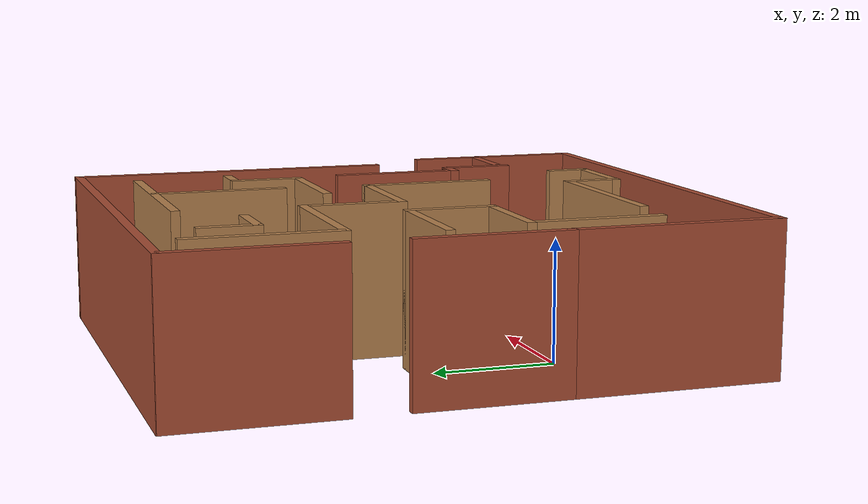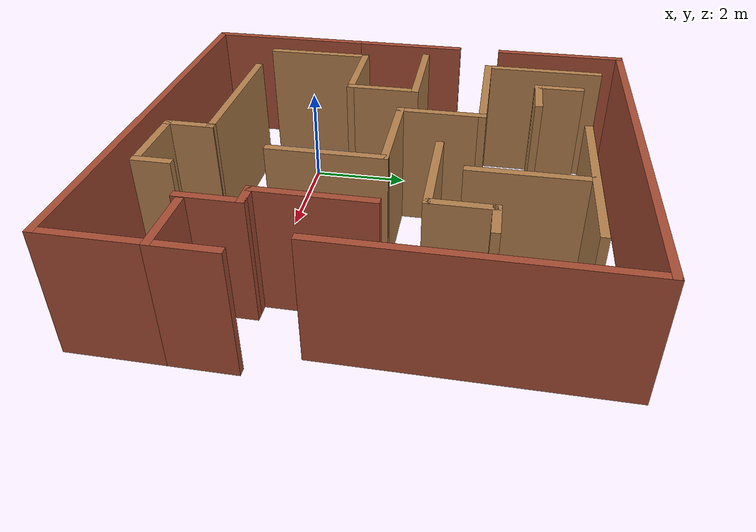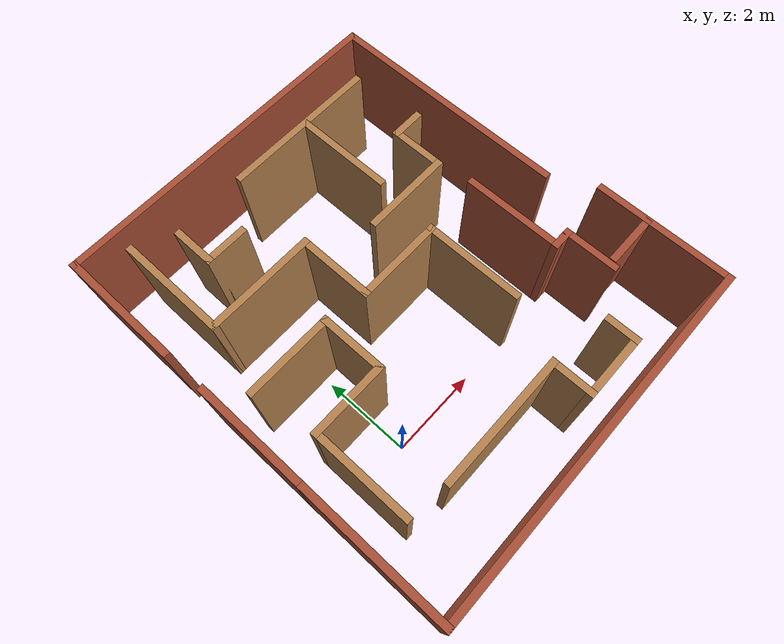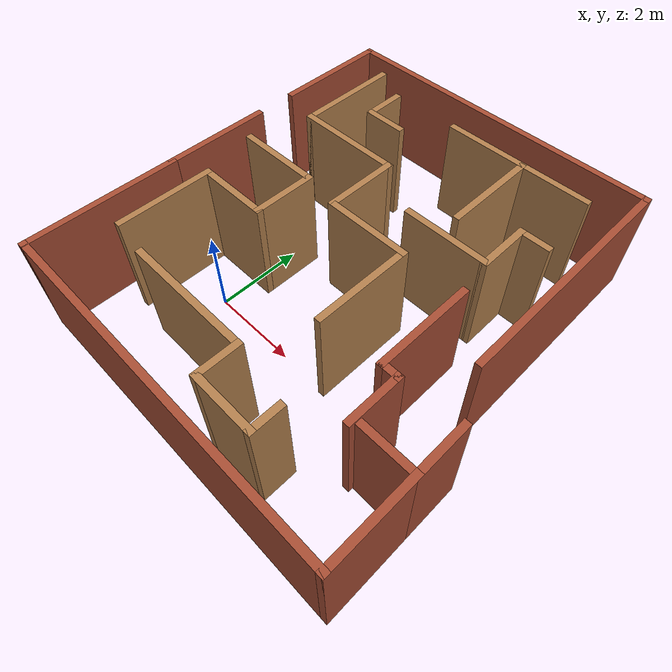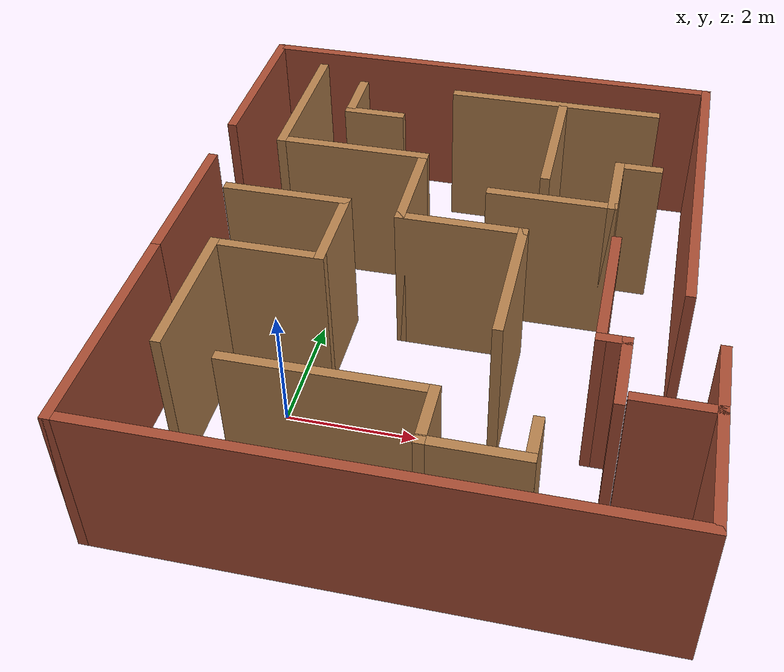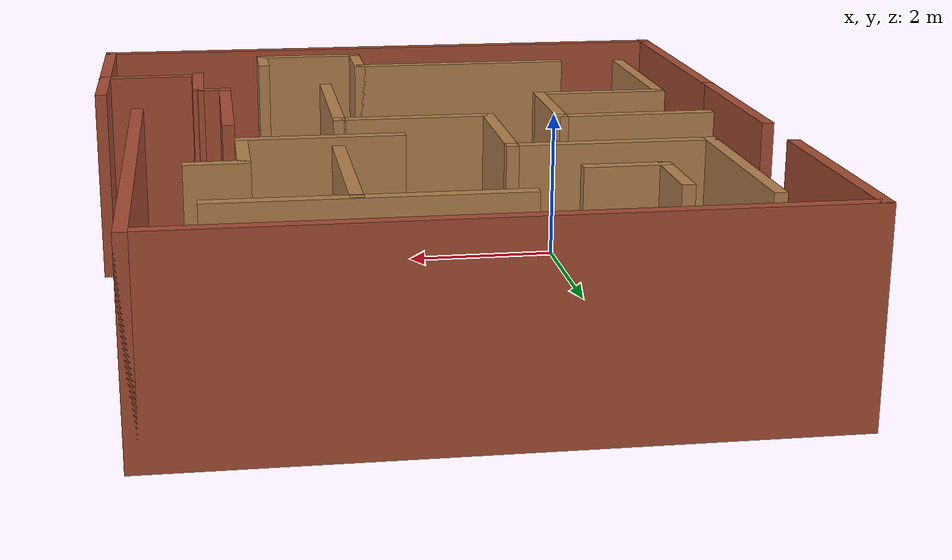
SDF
<?xml version='1.0'?>
<sdf version='1.7'>
  <model name='maze'>
    <pose>2.06 1.905 0 0 -0 0</pose>
    <link name='Wall_16'>
      <collision name='Wall_16_Collision'>
        <geometry>
          <box>
            <size>2.5 0.15 2.5</size>
          </box>
        </geometry>
        <pose>0 0 1.25 0 -0 0</pose>
      </collision>
      <visual name='Wall_16_Visual'>
        <pose>0 0 1.25 0 -0 0</pose>
        <geometry>
          <box>
            <size>2.5 0.15 2.5</size>
          </box>
        </geometry>
        <material>
          <script>
            <uri>file://media/materials/scripts/gazebo.material</uri>
            <name>Gazebo/Wood</name>
          </script>
          <ambient>1 1 1 1</ambient>
        </material>
        <meta>
          <layer>0</layer>
        </meta>
      </visual>
      <pose>-3.11479 2.96427 0 0 -0 -1.5708</pose>
    </link>
    <link name='Wall_18'>
      <collision name='Wall_18_Collision'>
        <geometry>
          <box>
            <size>3.5 0.15 2.5</size>
          </box>
        </geometry>
        <pose>0 0 1.25 0 -0 0</pose>
      </collision>
      <visual name='Wall_18_Visual'>
        <pose>0 0 1.25 0 -0 0</pose>
        <geometry>
          <box>
            <size>3.5 0.15 2.5</size>
          </box>
        </geometry>
        <material>
          <script>
            <uri>file://media/materials/scripts/gazebo.material</uri>
            <name>Gazebo/Bricks</name>
          </script>
          <ambient>1 1 1 1</ambient>
        </material>
        <meta>
          <layer>0</layer>
        </meta>
      </visual>
      <pose>-4.05 -2.99 0 0 -0 -1.5708</pose>
    </link>
    <link name='Wall_19'>
      <collision name='Wall_19_Collision'>
        <geometry>
          <box>
            <size>8.25 0.15 2.5</size>
          </box>
        </geometry>
        <pose>0 0 1.25 0 -0 0</pose>
      </collision>
      <visual name='Wall_19_Visual'>
        <pose>0 0 1.25 0 -0 0</pose>
        <geometry>
          <box>
            <size>8.25 0.15 2.5</size>
          </box>
        </geometry>
        <material>
          <script>
            <uri>file://media/materials/scripts/gazebo.material</uri>
            <name>Gazebo/Bricks</name>
          </script>
          <ambient>1 1 1 1</ambient>
        </material>
        <meta>
          <layer>0</layer>
        </meta>
      </visual>
      <pose>-0 -4.665 0 0 -0 0</pose>
    </link>
    <link name='Wall_21'>
      <collision name='Wall_21_Collision'>
        <geometry>
          <box>
            <size>5.5 0.15 2.5</size>
          </box>
        </geometry>
        <pose>0 0 1.25 0 -0 0</pose>
      </collision>
      <visual name='Wall_21_Visual'>
        <pose>0 0 1.25 0 -0 0</pose>
        <geometry>
          <box>
            <size>5.5 0.15 2.5</size>
          </box>
        </geometry>
        <material>
          <script>
            <uri>file://media/materials/scripts/gazebo.material</uri>
            <name>Gazebo/Bricks</name>
          </script>
          <ambient>1 1 1 1</ambient>
        </material>
        <meta>
          <layer>0</layer>
        </meta>
      </visual>
      <pose>3.55 1.99 0 0 -0 -1.5708</pose>
    </link>
    <link name='Wall_24'>
      <collision name='Wall_24_Collision'>
        <geometry>
          <box>
            <size>2 0.15 2.5</size>
          </box>
        </geometry>
        <pose>0 0 1.25 0 -0 0</pose>
      </collision>
      <visual name='Wall_24_Visual'>
        <pose>0 0 1.25 0 -0 0</pose>
        <geometry>
          <box>
            <size>2 0.15 2.5</size>
          </box>
        </geometry>
        <material>
          <script>
            <uri>file://media/materials/scripts/gazebo.material</uri>
            <name>Gazebo/Bricks</name>
          </script>
          <ambient>1 1 1 1</ambient>
        </material>
        <meta>
          <layer>0</layer>
        </meta>
      </visual>
      <pose>4.05 -3.74 0 0 -0 1.5708</pose>
    </link>
    <link name='Wall_25'>
      <collision name='Wall_25_Collision'>
        <geometry>
          <box>
            <size>1.25 0.15 2.5</size>
          </box>
        </geometry>
        <pose>0 0 1.25 0 -0 0</pose>
      </collision>
      <visual name='Wall_25_Visual'>
        <pose>0 0 1.25 0 -0 0</pose>
        <geometry>
          <box>
            <size>1.25 0.15 2.5</size>
          </box>
        </geometry>
        <material>
          <script>
            <uri>file://media/materials/scripts/gazebo.material</uri>
            <name>Gazebo/Bricks</name>
          </script>
          <ambient>1 1 1 1</ambient>
        </material>
        <meta>
          <layer>0</layer>
        </meta>
      </visual>
      <pose>3.5 -2.815 0 0 -0 3.14159</pose>
    </link>
    <link name='Wall_28'>
      <collision name='Wall_28_Collision'>
        <geometry>
          <box>
            <size>2.5 0.15 2.5</size>
          </box>
        </geometry>
        <pose>0 0 1.25 0 -0 0</pose>
      </collision>
      <visual name='Wall_28_Visual'>
        <pose>0 0 1.25 0 -0 0</pose>
        <geometry>
          <box>
            <size>2.5 0.15 2.5</size>
          </box>
        </geometry>
        <material>
          <script>
            <uri>file://media/materials/scripts/gazebo.material</uri>
            <name>Gazebo/Wood</name>
          </script>
          <ambient>1 1 1 1</ambient>
        </material>
        <meta>
          <layer>0</layer>
        </meta>
      </visual>
      <pose>-1.93979 1.78927 0 0 -0 0</pose>
    </link>
    <link name='Wall_29'>
      <collision name='Wall_29_Collision'>
        <geometry>
          <box>
            <size>1.75 0.15 2.5</size>
          </box>
        </geometry>
        <pose>0 0 1.25 0 -0 0</pose>
      </collision>
      <visual name='Wall_29_Visual'>
        <pose>0 0 1.25 0 -0 0</pose>
        <geometry>
          <box>
            <size>1.75 0.15 2.5</size>
          </box>
        </geometry>
        <material>
          <script>
            <uri>file://media/materials/scripts/gazebo.material</uri>
            <name>Gazebo/Wood</name>
          </script>
          <ambient>1 1 1 1</ambient>
        </material>
        <meta>
          <layer>0</layer>
        </meta>
      </visual>
      <pose>-0.764794 0.989271 0 0 -0 -1.5708</pose>
    </link>
    <link name='Wall_3'>
      <collision name='Wall_3_Collision'>
        <geometry>
          <box>
            <size>2.5 0.15 2.5</size>
          </box>
        </geometry>
        <pose>0 0 1.25 0 -0 0</pose>
      </collision>
      <visual name='Wall_3_Visual'>
        <pose>0 0 1.25 0 -0 0</pose>
        <geometry>
          <box>
            <size>2.5 0.15 2.5</size>
          </box>
        </geometry>
        <material>
          <script>
            <uri>file://media/materials/scripts/gazebo.material</uri>
            <name>Gazebo/Bricks</name>
          </script>
          <ambient>1 1 1 1</ambient>
        </material>
        <meta>
          <layer>0</layer>
        </meta>
      </visual>
      <pose>-4.05 -0.14 0 0 -0 -1.5708</pose>
    </link>
    <link name='Wall_30'>
      <collision name='Wall_30_Collision'>
        <geometry>
          <box>
            <size>2 0.15 2.5</size>
          </box>
        </geometry>
        <pose>0 0 1.25 0 -0 0</pose>
      </collision>
      <visual name='Wall_30_Visual'>
        <pose>0 0 1.25 0 -0 0</pose>
        <geometry>
          <box>
            <size>2 0.15 2.5</size>
          </box>
        </geometry>
        <material>
          <script>
            <uri>file://media/materials/scripts/gazebo.material</uri>
            <name>Gazebo/Wood</name>
          </script>
          <ambient>1 1 1 1</ambient>
        </material>
        <meta>
          <layer>0</layer>
        </meta>
      </visual>
      <pose>0.160206 0.18927 0 0 -0 0</pose>
    </link>
    <link name='Wall_31'>
      <collision name='Wall_31_Collision'>
        <geometry>
          <box>
            <size>2.25 0.15 2.5</size>
          </box>
        </geometry>
        <pose>0 0 1.25 0 -0 0</pose>
      </collision>
      <visual name='Wall_31_Visual'>
        <pose>0 0 1.25 0 -0 0</pose>
        <geometry>
          <box>
            <size>2.25 0.15 2.5</size>
          </box>
        </geometry>
        <material>
          <script>
            <uri>file://media/materials/scripts/gazebo.material</uri>
            <name>Gazebo/Wood</name>
          </script>
          <ambient>1 1 1 1</ambient>
        </material>
        <meta>
          <layer>0</layer>
        </meta>
      </visual>
      <pose>1.08521 -0.86073 0 0 -0 -1.5708</pose>
    </link>
    <link name='Wall_33'>
      <collision name='Wall_33_Collision'>
        <geometry>
          <box>
            <size>2.25 0.15 2.5</size>
          </box>
        </geometry>
        <pose>0 0 1.25 0 -0 0</pose>
      </collision>
      <visual name='Wall_33_Visual'>
        <pose>0 0 1.25 0 -0 0</pose>
        <geometry>
          <box>
            <size>2.25 0.15 2.5</size>
          </box>
        </geometry>
        <material>
          <script>
            <uri>file://media/materials/scripts/gazebo.material</uri>
            <name>Gazebo/Bricks</name>
          </script>
          <ambient>1 1 1 1</ambient>
        </material>
        <meta>
          <layer>0</layer>
        </meta>
      </visual>
      <pose>2.43521 -0.769992 0 0 -0 1.5708</pose>
    </link>
    <link name='Wall_35'>
      <collision name='Wall_35_Collision'>
        <geometry>
          <box>
            <size>3 0.15 2.5</size>
          </box>
        </geometry>
        <pose>0 0 1.25 0 -0 0</pose>
      </collision>
      <visual name='Wall_35_Visual'>
        <pose>0 0 1.25 0 -0 0</pose>
        <geometry>
          <box>
            <size>3 0.15 2.5</size>
          </box>
        </geometry>
        <material>
          <script>
            <uri>file://media/materials/scripts/gazebo.material</uri>
            <name>Gazebo/Wood</name>
          </script>
          <ambient>1 1 1 1</ambient>
        </material>
        <meta>
          <layer>0</layer>
        </meta>
      </visual>
      <pose>-0.925617 -3.22651 0 0 -0 0</pose>
    </link>
    <link name='Wall_36'>
      <collision name='Wall_36_Collision'>
        <geometry>
          <box>
            <size>1 0.15 2.5</size>
          </box>
        </geometry>
        <pose>0 0 1.25 0 -0 0</pose>
      </collision>
      <visual name='Wall_36_Visual'>
        <pose>0 0 1.25 0 -0 0</pose>
        <geometry>
          <box>
            <size>1 0.15 2.5</size>
          </box>
        </geometry>
        <material>
          <script>
            <uri>file://media/materials/scripts/gazebo.material</uri>
            <name>Gazebo/Wood</name>
          </script>
          <ambient>1 1 1 1</ambient>
        </material>
        <meta>
          <layer>0</layer>
        </meta>
      </visual>
      <pose>0.499384 -3.65151 0 0 -0 -1.5708</pose>
    </link>
    <link name='Wall_38'>
      <collision name='Wall_38_Collision'>
        <geometry>
          <box>
            <size>3.5 0.15 2.5</size>
          </box>
        </geometry>
        <pose>0 0 1.25 0 -0 0</pose>
      </collision>
      <visual name='Wall_38_Visual'>
        <pose>0 0 1.25 0 -0 0</pose>
        <geometry>
          <box>
            <size>3.5 0.15 2.5</size>
          </box>
        </geometry>
        <material>
          <script>
            <uri>file://media/materials/scripts/gazebo.material</uri>
            <name>Gazebo/Wood</name>
          </script>
          <ambient>1 1 1 1</ambient>
        </material>
        <meta>
          <layer>0</layer>
        </meta>
      </visual>
      <pose>1.0706 3.77632 0 0 -0 0</pose>
    </link>
    <link name='Wall_40'>
      <collision name='Wall_40_Collision'>
        <geometry>
          <box>
            <size>2.25 0.15 2.5</size>
          </box>
        </geometry>
        <pose>0 0 1.25 0 -0 0</pose>
      </collision>
      <visual name='Wall_40_Visual'>
        <pose>0 0 1.25 0 -0 0</pose>
        <geometry>
          <box>
            <size>2.25 0.15 2.5</size>
          </box>
        </geometry>
        <material>
          <script>
            <uri>file://media/materials/scripts/gazebo.material</uri>
            <name>Gazebo/Wood</name>
          </script>
          <ambient>1 1 1 1</ambient>
        </material>
        <meta>
          <layer>0</layer>
        </meta>
      </visual>
      <pose>1.21035 2.69608 0 0 -0 -1.5708</pose>
    </link>
    <link name='Wall_42'>
      <collision name='Wall_42_Collision'>
        <geometry>
          <box>
            <size>2 0.15 2.5</size>
          </box>
        </geometry>
        <pose>0 0 1.25 0 -0 0</pose>
      </collision>
      <visual name='Wall_42_Visual'>
        <pose>0 0 1.25 0 -0 0</pose>
        <geometry>
          <box>
            <size>2 0.15 2.5</size>
          </box>
        </geometry>
        <material>
          <script>
            <uri>file://media/materials/scripts/gazebo.material</uri>
            <name>Gazebo/Wood</name>
          </script>
          <ambient>1 1 1 1</ambient>
        </material>
        <meta>
          <layer>0</layer>
        </meta>
      </visual>
      <pose>-2.58299 0.358552 0 0 -0 0</pose>
    </link>
    <link name='Wall_43'>
      <collision name='Wall_43_Collision'>
        <geometry>
          <box>
            <size>1.5 0.15 2.5</size>
          </box>
        </geometry>
        <pose>0 0 1.25 0 -0 0</pose>
      </collision>
      <visual name='Wall_43_Visual'>
        <pose>0 0 1.25 0 -0 0</pose>
        <geometry>
          <box>
            <size>1.5 0.15 2.5</size>
          </box>
        </geometry>
        <material>
          <script>
            <uri>file://media/materials/scripts/gazebo.material</uri>
            <name>Gazebo/Wood</name>
          </script>
          <ambient>1 1 1 1</ambient>
        </material>
        <meta>
          <layer>0</layer>
        </meta>
      </visual>
      <pose>-1.65799 -0.316448 0 0 -0 -1.5708</pose>
    </link>
    <link name='Wall_44'>
      <collision name='Wall_44_Collision'>
        <geometry>
          <box>
            <size>1.75 0.15 2.5</size>
          </box>
        </geometry>
        <pose>0 0 1.25 0 -0 0</pose>
      </collision>
      <visual name='Wall_44_Visual'>
        <pose>0 0 1.25 0 -0 0</pose>
        <geometry>
          <box>
            <size>1.75 0.15 2.5</size>
          </box>
        </geometry>
        <material>
          <script>
            <uri>file://media/materials/scripts/gazebo.material</uri>
            <name>Gazebo/Wood</name>
          </script>
          <ambient>1 1 1 1</ambient>
        </material>
        <meta>
          <layer>0</layer>
        </meta>
      </visual>
      <pose>-2.45799 -0.991448 0 0 -0 3.14159</pose>
    </link>
    <link name='Wall_45'>
      <collision name='Wall_45_Collision'>
        <geometry>
          <box>
            <size>2.25 0.15 2.5</size>
          </box>
        </geometry>
        <pose>0 0 1.25 0 -0 0</pose>
      </collision>
      <visual name='Wall_45_Visual'>
        <pose>0 0 1.25 0 -0 0</pose>
        <geometry>
          <box>
            <size>2.25 0.15 2.5</size>
          </box>
        </geometry>
        <material>
          <script>
            <uri>file://media/materials/scripts/gazebo.material</uri>
            <name>Gazebo/Wood</name>
          </script>
          <ambient>1 1 1 1</ambient>
        </material>
        <meta>
          <layer>0</layer>
        </meta>
      </visual>
      <pose>-3.25799 -2.04145 0 0 -0 -1.5708</pose>
    </link>
    <link name='Wall_49'>
      <collision name='Wall_49_Collision'>
        <geometry>
          <box>
            <size>0.5 0.15 2.5</size>
          </box>
        </geometry>
        <pose>0 0 1.25 0 -0 0</pose>
      </collision>
      <visual name='Wall_49_Visual'>
        <pose>0 0 1.25 0 -0 0</pose>
        <geometry>
          <box>
            <size>0.5 0.15 2.5</size>
          </box>
        </geometry>
        <material>
          <script>
            <uri>file://media/materials/scripts/gazebo.material</uri>
            <name>Gazebo/Bricks</name>
          </script>
          <ambient>1 1 1 1</ambient>
        </material>
        <meta>
          <layer>0</layer>
        </meta>
      </visual>
      <pose>2.61021 -1.81999 0 0 -0 0</pose>
    </link>
    <link name='Wall_5'>
      <collision name='Wall_5_Collision'>
        <geometry>
          <box>
            <size>2.75 0.15 2.5</size>
          </box>
        </geometry>
        <pose>0 0 1.25 0 -0 0</pose>
      </collision>
      <visual name='Wall_5_Visual'>
        <pose>0 0 1.25 0 -0 0</pose>
        <geometry>
          <box>
            <size>2.75 0.15 2.5</size>
          </box>
        </geometry>
        <material>
          <script>
            <uri>file://media/materials/scripts/gazebo.material</uri>
            <name>Gazebo/Bricks</name>
          </script>
          <ambient>1 1 1 1</ambient>
        </material>
        <meta>
          <layer>0</layer>
        </meta>
      </visual>
      <pose>-4.05 3.355 0 0 -0 1.5708</pose>
    </link>
    <link name='Wall_50'>
      <collision name='Wall_50_Collision'>
        <geometry>
          <box>
            <size>1.25 0.15 2.5</size>
          </box>
        </geometry>
        <pose>0 0 1.25 0 -0 0</pose>
      </collision>
      <visual name='Wall_50_Visual'>
        <pose>0 0 1.25 0 -0 0</pose>
        <geometry>
          <box>
            <size>1.25 0.15 2.5</size>
          </box>
        </geometry>
        <material>
          <script>
            <uri>file://media/materials/scripts/gazebo.material</uri>
            <name>Gazebo/Bricks</name>
          </script>
          <ambient>1 1 1 1</ambient>
        </material>
        <meta>
          <layer>0</layer>
        </meta>
      </visual>
      <pose>2.78521 -2.36999 0 0 -0 -1.5708</pose>
    </link>
    <link name='Wall_52'>
      <collision name='Wall_52_Collision'>
        <geometry>
          <box>
            <size>2 0.15 2.5</size>
          </box>
        </geometry>
        <pose>0 0 1.25 0 -0 0</pose>
      </collision>
      <visual name='Wall_52_Visual'>
        <pose>0 0 1.25 0 -0 0</pose>
        <geometry>
          <box>
            <size>2 0.15 2.5</size>
          </box>
        </geometry>
        <material>
          <script>
            <uri>file://media/materials/scripts/gazebo.material</uri>
            <name>Gazebo/Wood</name>
          </script>
          <ambient>1 1 1 1</ambient>
        </material>
        <meta>
          <layer>0</layer>
        </meta>
      </visual>
      <pose>1.3792 1.08445 0 0 -0 0</pose>
    </link>
    <link name='Wall_53'>
      <collision name='Wall_53_Collision'>
        <geometry>
          <box>
            <size>1.25 0.15 2.5</size>
          </box>
        </geometry>
        <pose>0 0 1.25 0 -0 0</pose>
      </collision>
      <visual name='Wall_53_Visual'>
        <pose>0 0 1.25 0 -0 0</pose>
        <geometry>
          <box>
            <size>1.25 0.15 2.5</size>
          </box>
        </geometry>
        <material>
          <script>
            <uri>file://media/materials/scripts/gazebo.material</uri>
            <name>Gazebo/Wood</name>
          </script>
          <ambient>1 1 1 1</ambient>
        </material>
        <meta>
          <layer>0</layer>
        </meta>
      </visual>
      <pose>2.3042 1.63445 0 0 -0 1.5708</pose>
    </link>
    <link name='Wall_54'>
      <collision name='Wall_54_Collision'>
        <geometry>
          <box>
            <size>0.75 0.15 2.5</size>
          </box>
        </geometry>
        <pose>0 0 1.25 0 -0 0</pose>
      </collision>
      <visual name='Wall_54_Visual'>
        <pose>0 0 1.25 0 -0 0</pose>
        <geometry>
          <box>
            <size>0.75 0.15 2.5</size>
          </box>
        </geometry>
        <material>
          <script>
            <uri>file://media/materials/scripts/gazebo.material</uri>
            <name>Gazebo/Wood</name>
          </script>
          <ambient>1 1 1 1</ambient>
        </material>
        <meta>
          <layer>0</layer>
        </meta>
      </visual>
      <pose>2.6042 2.18445 0 0 -0 0</pose>
    </link>
    <link name='Wall_56'>
      <collision name='Wall_56_Collision'>
        <geometry>
          <box>
            <size>1 0.15 2.5</size>
          </box>
        </geometry>
        <pose>0 0 1.25 0 -0 0</pose>
      </collision>
      <visual name='Wall_56_Visual'>
        <pose>0 0 1.25 0 -0 0</pose>
        <geometry>
          <box>
            <size>1 0.15 2.5</size>
          </box>
        </geometry>
        <material>
          <script>
            <uri>file://media/materials/scripts/gazebo.material</uri>
            <name>Gazebo/Wood</name>
          </script>
          <ambient>1 1 1 1</ambient>
        </material>
        <meta>
          <layer>0</layer>
        </meta>
      </visual>
      <pose>-2.26791 3.29083 0 0 -0 -1.5708</pose>
    </link>
    <link name='Wall_57'>
      <collision name='Wall_57_Collision'>
        <geometry>
          <box>
            <size>1 0.15 2.5</size>
          </box>
        </geometry>
        <pose>0 0 1.25 0 -0 0</pose>
      </collision>
      <visual name='Wall_57_Visual'>
        <pose>0 0 1.25 0 -0 0</pose>
        <geometry>
          <box>
            <size>1 0.15 2.5</size>
          </box>
        </geometry>
        <material>
          <script>
            <uri>file://media/materials/scripts/gazebo.material</uri>
            <name>Gazebo/Wood</name>
          </script>
          <ambient>1 1 1 1</ambient>
        </material>
        <meta>
          <layer>0</layer>
        </meta>
      </visual>
      <pose>-1.84291 2.86583 0 0 -0 0</pose>
    </link>
    <link name='Wall_60'>
      <collision name='Wall_60_Collision'>
        <geometry>
          <box>
            <size>1.5 0.15 2.5</size>
          </box>
        </geometry>
        <pose>0 0 1.25 0 -0 0</pose>
      </collision>
      <visual name='Wall_60_Visual'>
        <pose>0 0 1.25 0 -0 0</pose>
        <geometry>
          <box>
            <size>1.5 0.15 2.5</size>
          </box>
        </geometry>
        <material>
          <script>
            <uri>file://media/materials/scripts/gazebo.material</uri>
            <name>Gazebo/Wood</name>
          </script>
          <ambient>1 1 1 1</ambient>
        </material>
        <meta>
          <layer>0</layer>
        </meta>
      </visual>
      <pose>1.17438 -4.07651 0 0 -0 0</pose>
    </link>
    <link name='Wall_61'>
      <collision name='Wall_61_Collision'>
        <geometry>
          <box>
            <size>0.75 0.15 2.5</size>
          </box>
        </geometry>
        <pose>0 0 1.25 0 -0 0</pose>
      </collision>
      <visual name='Wall_61_Visual'>
        <pose>0 0 1.25 0 -0 0</pose>
        <geometry>
          <box>
            <size>0.75 0.15 2.5</size>
          </box>
        </geometry>
        <material>
          <script>
            <uri>file://media/materials/scripts/gazebo.material</uri>
            <name>Gazebo/Wood</name>
          </script>
          <ambient>1 1 1 1</ambient>
        </material>
        <meta>
          <layer>0</layer>
        </meta>
      </visual>
      <pose>1.84938 -3.77651 0 0 -0 1.5708</pose>
    </link>
    <link name='Wall_63'>
      <collision name='Wall_63_Collision'>
        <geometry>
          <box>
            <size>1.25 0.15 2.5</size>
          </box>
        </geometry>
        <pose>0 0 1.25 0 -0 0</pose>
      </collision>
      <visual name='Wall_63_Visual'>
        <pose>0 0 1.25 0 -0 0</pose>
        <geometry>
          <box>
            <size>1.25 0.15 2.5</size>
          </box>
        </geometry>
        <material>
          <script>
            <uri>file://media/materials/scripts/gazebo.material</uri>
            <name>Gazebo/Bricks</name>
          </script>
          <ambient>1 1 1 1</ambient>
        </material>
        <meta>
          <layer>0</layer>
        </meta>
      </visual>
      <pose>4.05 -2.265 0 0 -0 1.5708</pose>
    </link>
    <link name='Wall_7'>
      <collision name='Wall_7_Collision'>
        <geometry>
          <box>
            <size>7.75 0.15 2.5</size>
          </box>
        </geometry>
        <pose>0 0 1.25 0 -0 0</pose>
      </collision>
      <visual name='Wall_7_Visual'>
        <pose>0 0 1.25 0 -0 0</pose>
        <geometry>
          <box>
            <size>7.75 0.15 2.5</size>
          </box>
        </geometry>
        <material>
          <script>
            <uri>file://media/materials/scripts/gazebo.material</uri>
            <name>Gazebo/Bricks</name>
          </script>
          <ambient>1 1 1 1</ambient>
        </material>
        <meta>
          <layer>0</layer>
        </meta>
      </visual>
      <pose>-0.25 4.665 0 0 -0 0</pose>
    </link>
    <static>1</static>
  </model>
</sdf>
